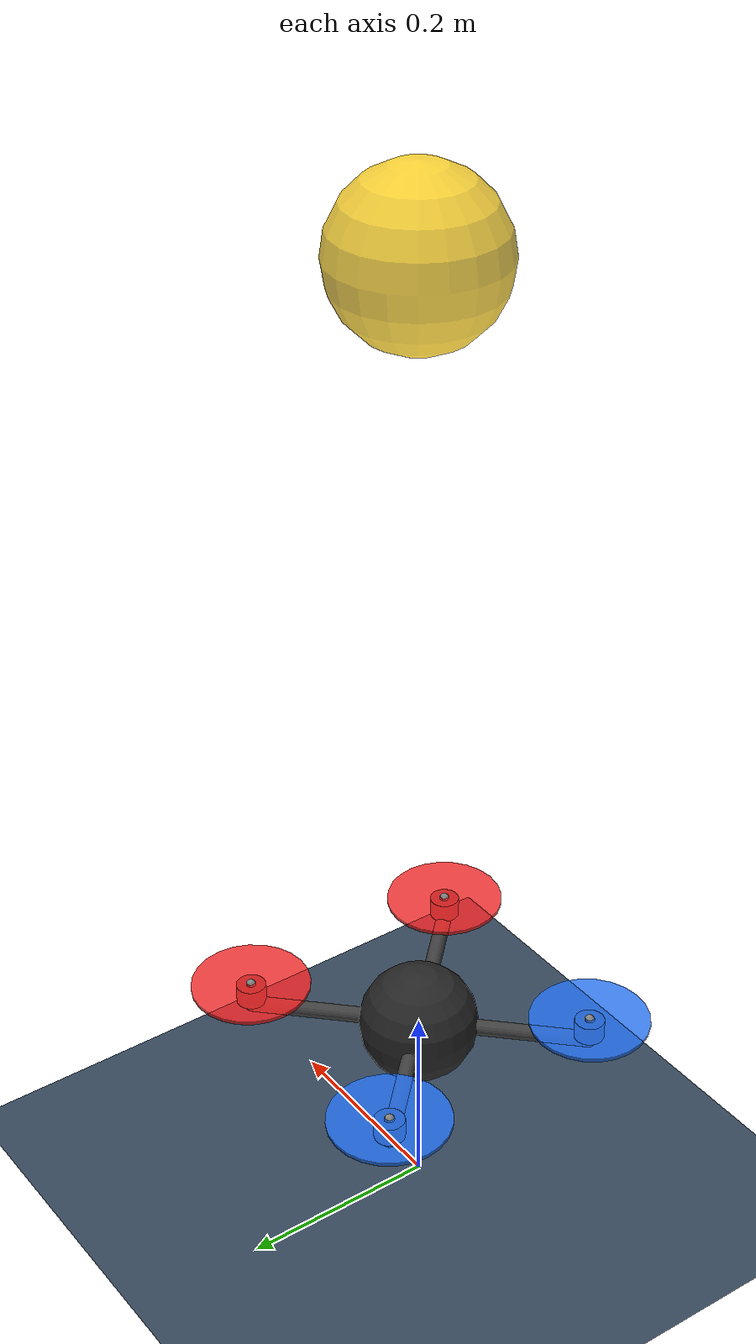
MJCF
<mujoco model="quadrotor">
  <compiler angle="radian" coordinate="local"/>

  <option gravity="0 0 -9.81" integrator="RK4" timestep="0.01"/>

  <visual>
    <headlight ambient="0.4 0.4 0.4" diffuse="0.8 0.8 0.8" specular="0.1 0.1 0.1"/>
    <rgba haze="0.15 0.25 0.35 1"/>
    <global azimuth="120" elevation="-20" offwidth="1280" offheight="720"/>
  </visual>

  <asset>
    <texture type="skybox" builtin="gradient" rgb1="0.3 0.5 0.7" rgb2="0.0 0.1 0.2" width="512" height="512"/>
    <texture name="grid" type="2d" builtin="checker" width="512" height="512" rgb1="0.25 0.35 0.45" rgb2="0.15 0.2 0.25"/>
    <material name="grid" texture="grid" texrepeat="2 2" texuniform="true" reflectance="0.2"/>
    <material name="chassis" rgba="0.15 0.15 0.15 1.0" specular="0.5" shininess="0.5"/>
    <material name="arm" rgba="0.25 0.25 0.25 1.0"/>
    <material name="front_prop" rgba="0.95 0.15 0.15 0.85" specular="0.4"/>
    <material name="rear_prop" rgba="0.15 0.45 0.95 0.85" specular="0.4"/>
    <material name="target_mat" rgba="1.0 0.8 0.0 0.75" specular="0.9"/>
  </asset>

  <worldbody>
    <!-- Lighting -->
    <light directional="true" diffuse="0.8 0.8 0.8" specular="0.3 0.3 0.3" pos="0 0 6.0" dir="0 0 -1"/>
    <light directional="true" diffuse="0.4 0.4 0.4" specular="0.1 0.1 0.1" pos="4 -4 5.0" dir="-1 1 -1"/>

    <!-- Floor Plane -->
    <geom name="floor" type="plane" size="12 12 0.1" material="grid" condim="3"/>

    <!-- Target Goal Waypoint (Mocap Body with zero mass so it does not affect physics) -->
    <body name="target" pos="0.0 0.0 1.0" mocap="true">
      <geom name="target_sphere" type="sphere" size="0.08" material="target_mat" contype="0" conaffinity="0" density="0"/>
    </body>

    <!-- Fixed Observer Wide Arena Cameras (Ensures drone is NEVER out of frame) -->
    <camera name="arena_cam" pos="3.8 -3.8 3.0" xyaxes="0.707 0.707 0 -0.408 0.408 0.816" fovy="60"/>
    <camera name="side_cam" pos="0.0 -4.5 2.2" xyaxes="1 0 0 0 0.38 0.92" fovy="60"/>
    <camera name="top_cam" pos="0.0 0.0 6.0" xyaxes="1 0 0 0 1 0" fovy="60"/>

    <!-- 6-DOF Quadrotor Body -->
    <body name="quadrotor" pos="0 0 0.2">
      <freejoint name="root"/>
      <inertial pos="0 0 0" mass="0.500" diaginertia="0.0025 0.0025 0.0045"/>

      <!-- Tracking Camera (Follows the drone smoothly with wide FOV) -->
      <camera name="track_cam" mode="trackcom" pos="0.0 -3.2 1.6" xyaxes="1 0 0 0 0.45 0.89" fovy="60"/>

      <!-- Central Body / Fuselage -->
      <geom name="chassis_geom" type="sphere" size="0.06" material="chassis" density="0"/>

      <!-- Arms in X-Configuration (L = 0.17m) -->
      <geom name="arm1" type="capsule" fromto="0.12 0.12 0 -0.12 -0.12 0" size="0.008" material="arm" density="0"/>
      <geom name="arm2" type="capsule" fromto="-0.12 0.12 0 0.12 -0.12 0" size="0.008" material="arm" density="0"/>

      <!-- Rotor 0: Front-Right (+x, +y) -->
      <geom name="motor0" type="cylinder" pos="0.12 0.12 0.015" size="0.015 0.01" material="chassis" density="0"/>
      <geom name="prop0" type="cylinder" pos="0.12 0.12 0.025" size="0.06 0.002" material="front_prop" contype="0" conaffinity="0" density="0"/>
      <site name="thruster0" pos="0.12 0.12 0.025"/>

      <!-- Rotor 1: Rear-Right (-x, +y) -->
      <geom name="motor1" type="cylinder" pos="-0.12 0.12 0.015" size="0.015 0.01" material="chassis" density="0"/>
      <geom name="prop1" type="cylinder" pos="-0.12 0.12 0.025" size="0.06 0.002" material="rear_prop" contype="0" conaffinity="0" density="0"/>
      <site name="thruster1" pos="-0.12 0.12 0.025"/>

      <!-- Rotor 2: Rear-Left (-x, -y) -->
      <geom name="motor2" type="cylinder" pos="-0.12 -0.12 0.015" size="0.015 0.01" material="chassis" density="0"/>
      <geom name="prop2" type="cylinder" pos="-0.12 -0.12 0.025" size="0.06 0.002" material="rear_prop" contype="0" conaffinity="0" density="0"/>
      <site name="thruster2" pos="-0.12 -0.12 0.025"/>

      <!-- Rotor 3: Front-Left (+x, -y) -->
      <geom name="motor3" type="cylinder" pos="0.12 -0.12 0.015" size="0.015 0.01" material="chassis" density="0"/>
      <geom name="prop3" type="cylinder" pos="0.12 -0.12 0.025" size="0.06 0.002" material="front_prop" contype="0" conaffinity="0" density="0"/>
      <site name="thruster3" pos="0.12 -0.12 0.025"/>
    </body>
  </worldbody>

  <!-- Actuators: 4 Site Thrusters -->
  <actuator>
    <general name="thrust0" site="thruster0" gear="0 0 1 0 0  0.015" ctrlrange="0 3.0" ctrllimited="true"/>
    <general name="thrust1" site="thruster1" gear="0 0 1 0 0 -0.015" ctrlrange="0 3.0" ctrllimited="true"/>
    <general name="thrust2" site="thruster2" gear="0 0 1 0 0  0.015" ctrlrange="0 3.0" ctrllimited="true"/>
    <general name="thrust3" site="thruster3" gear="0 0 1 0 0 -0.015" ctrlrange="0 3.0" ctrllimited="true"/>
  </actuator>
</mujoco>
